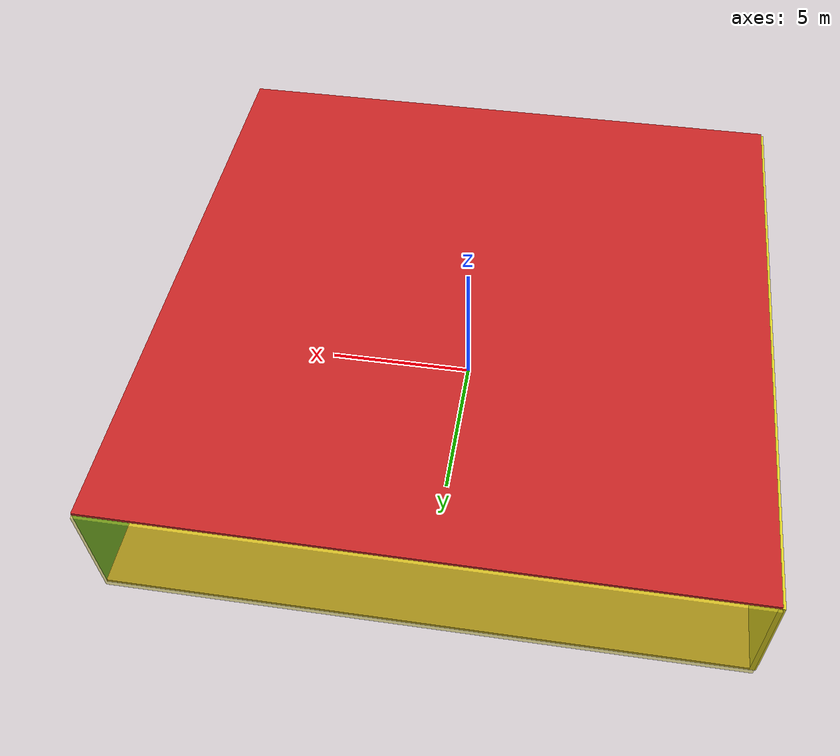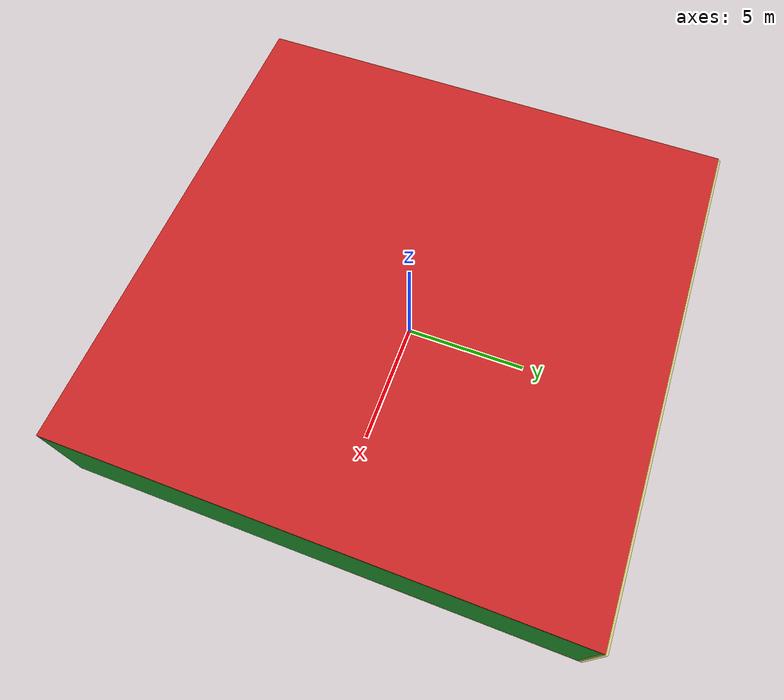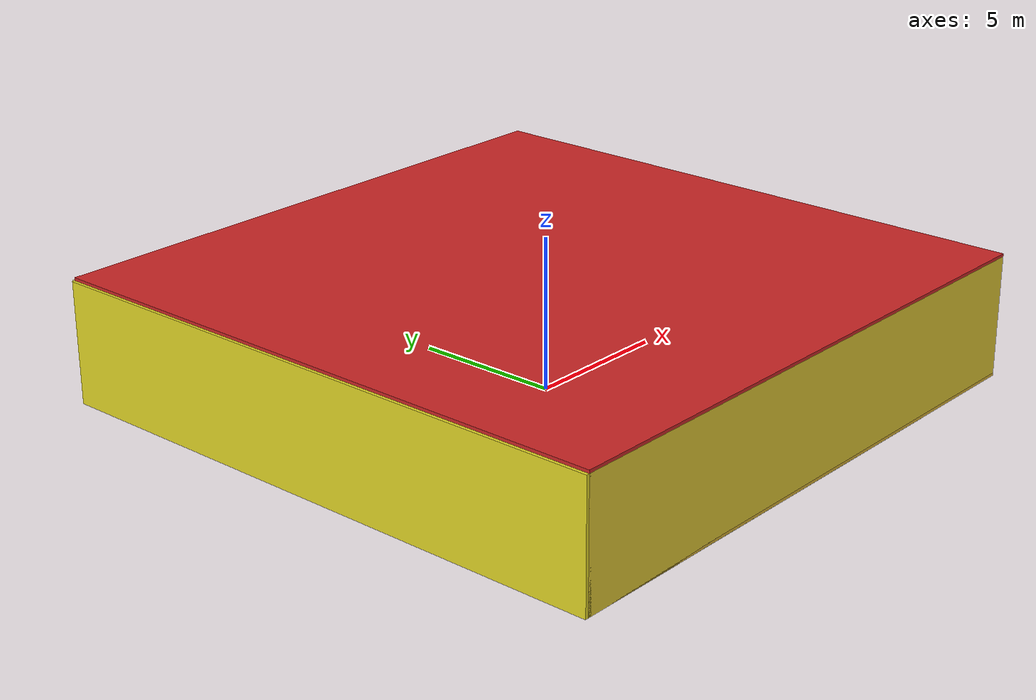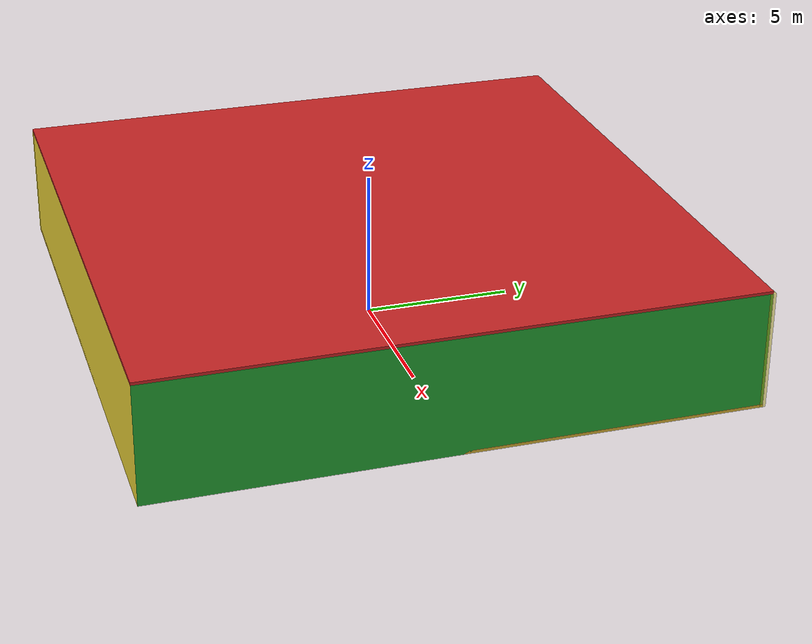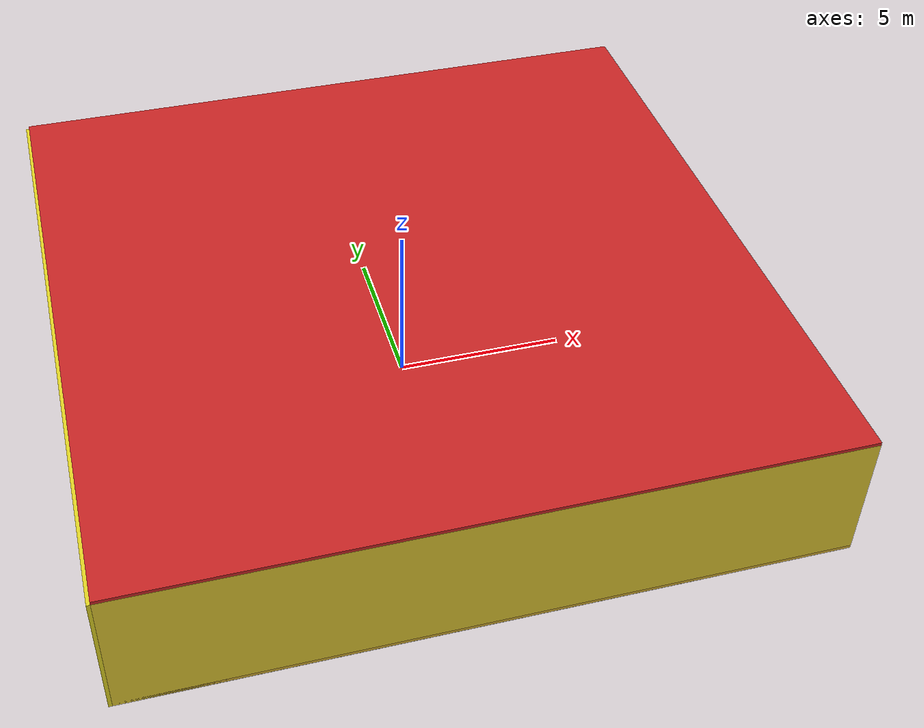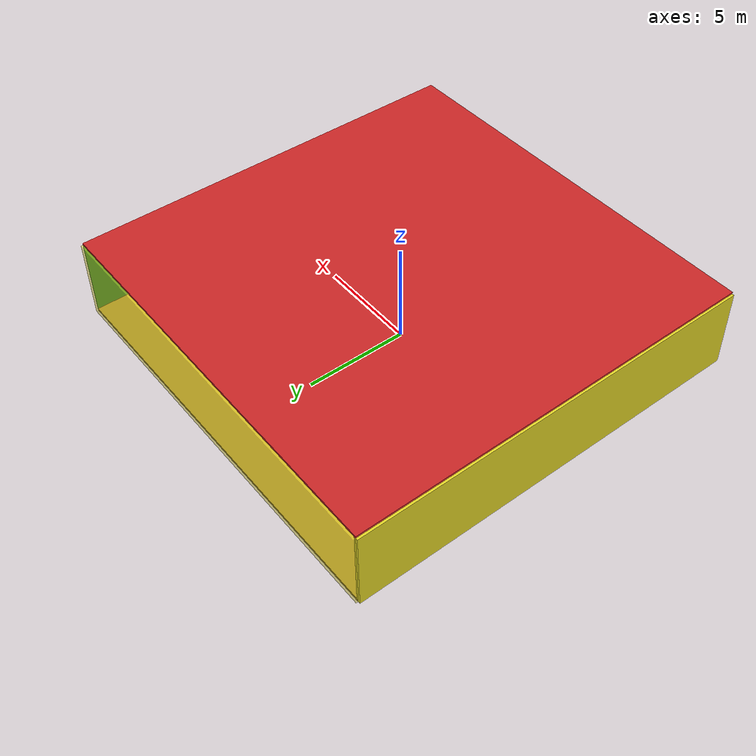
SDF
<sdf version="1.4">
 <world name="default">
  <physics type="ode">
   <max_step_size>0.001</max_step_size>
   <real_time_factor>1</real_time_factor>
   <real_time_update_rate>1000</real_time_update_rate>
   <gravity>0 0 -9.8</gravity>
  </physics>
  <scene><ambient>0.4 0.4 0.4 1</ambient><background>0.7 0.7 0.7 1</background><shadows>1</shadows></scene>
  <model name="Surrounding">
   <static>1</static>
   <link name="Ceiling">
    <collision name="Ceiling_Collision"><geometry><box><size>20 20 0.1</size></box></geometry></collision>
    <visual name="Ceiling_Visual">
     <geometry><box><size>20 20 0.1</size></box></geometry>
     <material>
      <script><uri>file://media/materials/scripts/gazebo.material</uri><name>Gazebo/RedBright</name></script>
     </material>
    </visual>
    <pose>0 0 4.05 0 0 0</pose>
   </link>
   <link name="Wall_South">
    <collision name="Wall_South_Collision">
     <geometry><box><size>20 0 4</size></box></geometry>
     <pose>0 0 2 0 -0 0</pose>
    </collision>
    <visual name="Wall_South_Visual">
     <pose>0 0 2 0 -0 0</pose>
     <geometry><box><size>20 0 4</size></box></geometry>
     <material>
      <script><uri>file://media/materials/scripts/gazebo.material</uri><name>Gazebo/ZincYellow</name></script>
     </material>
    </visual>
    <velocity_decay><linear>0</linear><angular>0</angular></velocity_decay>
    <pose>0 -10 0 0 -0 0</pose>
   </link>
   <link name="Wall_East">
    <collision name="Wall_21_Collision">
     <geometry><box><size>20 0 4</size></box></geometry>
     <pose>0 0 2 0 -0 0</pose>
    </collision>
    <visual name="Wall_21_Visual">
     <pose>0 0 2 0 -0 0</pose>
     <geometry><box><size>20 0 4</size></box></geometry>
     <material>
      <script><uri>file://media/materials/scripts/gazebo.material</uri><name>Gazebo/GreenGlow</name></script>
     </material>
    </visual>
    <velocity_decay><linear>0</linear><angular>0</angular></velocity_decay>
    <pose>10 0 0 0 -0 1.5708</pose>
   </link>
   <link name="Wall_North">
    <collision name="Wall_22_Collision">
     <geometry><box><size>20 0.2 4</size></box></geometry>
     <pose>0 0 2 0 -0 0</pose>
    </collision>
    <visual name="Wall_22_Visual">
     <pose>0 0 2 0 -0 0</pose>
     <geometry><box><size>20 0.2 4</size></box></geometry>
     <material>
      <script>
       <uri>file://media/materials/scripts/gazebo.material</uri>
       <name>Gazebo/YellowTransparent</name>
      </script>
     </material>
    </visual>
    <velocity_decay><linear>0</linear><angular>0</angular></velocity_decay>
    <pose>0 10 0 0 -0 0</pose>
   </link>
   <link name="Wall_West">
    <collision name="Wall_23_Collision">
     <geometry><box><size>20 0.2 4</size></box></geometry>
     <pose>0 0 2 0 -0 0</pose>
    </collision>
    <visual name="Wall_23_Visual">
     <pose>0 0 2 0 -0 0</pose>
     <geometry><box><size>20 0.2 4</size></box></geometry>
     <material>
      <script><uri>file://media/materials/scripts/gazebo.material</uri><name>Gazebo/Yellow</name></script>
     </material>
    </visual>
    <velocity_decay><linear>0</linear><angular>0</angular></velocity_decay>
    <pose>-10 0 0 0 0 -1.5708</pose>
   </link>
   <link name="Ground_link">
    <collision name="collision">
     <pose>0 0 .05 0 -0 0</pose>
     <geometry><box><size>20 20 0.1</size></box></geometry>
    </collision>
    <visual name="visual">
     <pose>0 0 .05 0 -0 0</pose>
     <geometry><box><size>20 20 0.1</size></box></geometry>
     <material>
      <script><uri>file://media/materials/scripts/gazebo.material</uri><name>Gazebo/Gold</name></script>
     </material>
    </visual>
   </link>
   <static>1</static>
  </model>
  <spherical_coordinates>
   <surface_model>EARTH_WGS84</surface_model>
   <latitude_deg>0</latitude_deg>
   <longitude_deg>0</longitude_deg>
   <elevation>0</elevation>
   <heading_deg>0</heading_deg>
  </spherical_coordinates>
  <light name="lightball_0" type="diffuse">
   <diffuse>0.8 0.8 0.8 1</diffuse>
   <specular>0.2 0.2 0.2 1</specular>
   <attenuation>
    <range>100</range>
    <constant>0.7</constant>
    <linear>0.01</linear>
    <quadratic>0.001</quadratic>
   </attenuation>
   <direction>-0.5 0.1 -0.9</direction>
   <pose>1.50461788218 6.55816126131 1.67551944157 0 0 0</pose>
  </light>
  <light name="lightball_1" type="diffuse">
   <diffuse>0.8 0.8 0.8 1</diffuse>
   <specular>0.2 0.2 0.2 1</specular>
   <attenuation>
    <range>100</range>
    <constant>0.7</constant>
    <linear>0.01</linear>
    <quadratic>0.001</quadratic>
   </attenuation>
   <direction>-0.5 0.1 -0.9</direction>
   <pose>6.08161338887 -6.27439554277 2.26922507336 0 0 0</pose>
  </light>
  <light name="lightball_2" type="diffuse">
   <diffuse>0.8 0.8 0.8 1</diffuse>
   <specular>0.2 0.2 0.2 1</specular>
   <attenuation>
    <range>100</range>
    <constant>0.7</constant>
    <linear>0.01</linear>
    <quadratic>0.001</quadratic>
   </attenuation>
   <direction>-0.5 0.1 -0.9</direction>
   <pose>-9.98059514609 -2.14136467099 2.63851048829 0 0 0</pose>
  </light>
  <light name="lightball_3" type="diffuse">
   <diffuse>0.8 0.8 0.8 1</diffuse>
   <specular>0.2 0.2 0.2 1</specular>
   <attenuation>
    <range>100</range>
    <constant>0.7</constant>
    <linear>0.01</linear>
    <quadratic>0.001</quadratic>
   </attenuation>
   <direction>-0.5 0.1 -0.9</direction>
   <pose>3.59318239507 -4.17267835235 3.64568451797 0 0 0</pose>
  </light>
  <light name="lightball_4" type="diffuse">
   <diffuse>0.8 0.8 0.8 1</diffuse>
   <specular>0.2 0.2 0.2 1</specular>
   <attenuation>
    <range>100</range>
    <constant>0.7</constant>
    <linear>0.01</linear>
    <quadratic>0.001</quadratic>
   </attenuation>
   <direction>-0.5 0.1 -0.9</direction>
   <pose>-2.89016932622 2.85584673115 2.60425234634 0 0 0</pose>
  </light>
  <include>
   <uri>model://textured_shapes</uri>
   <pose>-7.08148247691 4.26474609995 0 0 0 2.25981552486</pose>
  </include>
  <include><uri>model://cabinet</uri><pose>-4.69347704979 -6.85022515088 0 0 0 1.09800289435</pose></include>
  <include><uri>model://table</uri><pose>-4.7119167295 3.95023375302 0 0 0 2.43579686918</pose></include>
  <include><uri>model://cabinet</uri><pose>2.2404830949 -1.94005882718 0 0 0 1.48038169872</pose></include>
  <include><uri>model://cabinet</uri><pose>4.22687532519 -7.05284575948 0 0 0 0.360614026329</pose></include>
  <include><uri>model://cabinet</uri><pose>4.98762230524 1.2780139862 0 0 0 0.455794818124</pose></include>
  <include>
   <uri>model://textured_shapes</uri>
   <pose>7.05382288073 -0.820187011653 0 0 0 2.55074585032</pose>
  </include>
 </world>
</sdf>

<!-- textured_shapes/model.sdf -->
<sdf version="1.6">
  <model name="textured_shapes">
    <pose>0 0 0.5 0 0 0</pose>
    <link name="box">
      <pose>0 -1.5 0 0 0 0</pose>
      <collision name="collision">
        <geometry>
          <box>
            <size>1 1 1</size>
          </box>
        </geometry>
      </collision>
      <visual name="visual">
        <geometry>
          <box>
            <size>1 1 1</size>
          </box>
        </geometry>
        <material>
          <script>
            <uri>model://../model_source/models/textured_shapes/materials/scripts</uri>
            <uri>model://../model_source/models/textured_shapes/materials/textures</uri>
            <name>TexturedShape/Squares</name>
          </script>
        </material>
      </visual>
    </link>
    <link name="sphere">
      <collision name="collision">
        <geometry>
          <sphere>
            <radius>0.5</radius>
          </sphere>
        </geometry>
      </collision>
      <visual name="visual">
        <geometry>
          <sphere>
            <radius>0.5</radius>
          </sphere>
        </geometry>
        <material>
          <script>
            <uri>model://../model_source/models/textured_shapes/materials/scripts</uri>
            <uri>model://../model_source/models/textured_shapes/materials/textures</uri>
            <name>TexturedShape/Squares</name>
          </script>
        </material>
      </visual>
    </link>
    <link name="cylinder">
      <pose>0 1.5 0 0 0 0</pose>
      <collision name="collision">
        <geometry>
          <cylinder>
            <radius>0.5</radius>
            <length>1</length>
          </cylinder>
        </geometry>
      </collision>
      <visual name="visual">
        <geometry>
          <cylinder>
            <radius>0.5</radius>
            <length>1</length>
          </cylinder>
        </geometry>
        <material>
          <script>
            <uri>model://../model_source/models/textured_shapes/materials/scripts</uri>
            <uri>model://../model_source/models/textured_shapes/materials/textures</uri>
            <name>TexturedShape/Squares</name>
          </script>
        </material>
      </visual>
    </link>
  </model>
</sdf>

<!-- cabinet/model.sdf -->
<sdf version="1.5">
  <model name="cabinet">
    <static>true</static>
    <link name="cabinet_bottom_plate">
      <inertial>
        <pose>0 0 -1 0 0 0</pose>
        <inertia>
          <ixx>2.050000</ixx>
          <ixy>0</ixy>
          <ixz>0</ixz>
          <iyy>2.050000</iyy>
          <iyz>0</iyz>
          <izz>2.050000</izz>
        </inertia>
        <mass>25.000000</mass>
      </inertial>
      <collision name="cabinet_bottom_plate_geom">
        <pose>0 0 0.010000 0 0 0</pose>
        <geometry>
          <box>
            <size>0.450000 0.450000 0.020000</size>
          </box>
        </geometry>
      </collision>
      <visual name="cabinet_bottom_plate_geom_visual">
        <pose>0 0 0.010000 0 0 0</pose>
        <geometry>
          <box>
            <size>0.450000 0.450000 0.020000</size>
          </box>
        </geometry>
        <material>
          <script>
            <uri>model://media/materials/scripts/gazebo.material</uri>
            <name>Gazebo/Wood</name>
          </script>
        </material>
      </visual>
      <collision name="cabinet_bottom_plate_geom_cabinet_back_plate">
        <pose>0.235000 0 0.510000 0 0 0</pose>
        <geometry>
          <box>
            <size>0.020000 0.450000 1.020000</size>
          </box>
        </geometry>
      </collision>
      <visual name="cabinet_bottom_plate_geom_cabinet_back_plate_visual">
        <pose>0.235000 0 0.510000 0 0 0</pose>
        <geometry>
          <box>
            <size>0.020000 0.450000 1.020000</size>
          </box>
        </geometry>
        <material>
          <script>
            <uri>model://media/materials/scripts/gazebo.material</uri>
            <name>Gazebo/Wood</name>
          </script>
        </material>
      </visual>
      <collision name="cabinet_bottom_plate_geom_cabinet_left_plate">
        <pose>0 0.235000 0.510000 0 0 0</pose>
        <geometry>
          <box>
            <size>0.450000 0.020000 1.020000</size>
          </box>
        </geometry>
      </collision>
      <visual name="cabinet_bottom_plate_geom_cabinet_left_plate_visual">
        <pose>0 0.235000 0.510000 0 0 0</pose>
        <geometry>
          <box>
            <size>0.450000 0.020000 1.020000</size>
          </box>
        </geometry>
        <material>
          <script>
            <uri>model://media/materials/scripts/gazebo.material</uri>
            <name>Gazebo/Wood</name>
          </script>
        </material>
      </visual>
      <collision name="cabinet_bottom_plate_geom_cabinet_middle_plate">
        <pose>0 0 0.510000 0 0 0</pose>
        <geometry>
          <box>
            <size>0.450000 0.450000 0.020000</size>
          </box>
        </geometry>
      </collision>
      <visual name="cabinet_bottom_plate_geom_cabinet_middle_plate_visual">
        <pose>0 0 0.510000 0 0 0</pose>
        <geometry>
          <box>
            <size>0.450000 0.450000 0.020000</size>
          </box>
        </geometry>
        <material>
          <script>
            <uri>model://media/materials/scripts/gazebo.material</uri>
            <name>Gazebo/Wood</name>
          </script>
        </material>
      </visual>
      <collision name="cabinet_bottom_plate_geom_cabinet_right_plate">
        <pose>0 -0.235000 0.510000 0 0 0</pose>
        <geometry>
          <box>
            <size>0.450000 0.020000 1.020000</size>
          </box>
        </geometry>
      </collision>
      <visual name="cabinet_bottom_plate_geom_cabinet_right_plate_visual">
        <pose>0 -0.235000 0.510000 0 0 0</pose>
        <geometry>
          <box>
            <size>0.450000 0.020000 1.020000</size>
          </box>
        </geometry>
        <material>
          <script>
            <uri>model://media/materials/scripts/gazebo.material</uri>
            <name>Gazebo/Wood</name>
          </script>
        </material>
      </visual>
      <collision name="cabinet_bottom_plate_geom_cabinet_top_plate">
        <pose>0 0 1.010000 0 0 0</pose>
        <geometry>
          <box>
            <size>0.450000 0.450000 0.020000</size>
          </box>
        </geometry>
      </collision>
      <visual name="cabinet_bottom_plate_geom_cabinet_top_plate_visual">
        <pose>0 0 1.010000 0 0 0</pose>
        <geometry>
          <box>
            <size>0.450000 0.450000 0.020000</size>
          </box>
        </geometry>
        <material>
          <script>
            <uri>model://media/materials/scripts/gazebo.material</uri>
            <name>Gazebo/Wood</name>
          </script>
        </material>
      </visual>
    </link>
  </model>
</sdf>

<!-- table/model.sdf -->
<sdf version="1.5">
  <model name="table">
    <static>true</static>
    <link name="link">
      <collision name="surface">
        <pose>0 0 1.0 0 0 0</pose>
        <geometry>
          <box>
            <size>1.5 0.8 0.03</size>
          </box>
        </geometry>
        <surface>
          <friction>
            <ode>
              <mu>0.6</mu>
              <mu2>0.6</mu2>
            </ode>
          </friction>
        </surface>
      </collision>
      <visual name="visual1">
        <pose>0 0 1.0 0 0 0</pose>
        <geometry>
          <box>
            <size>1.5 0.8 0.03</size>
          </box>
        </geometry>
        <material>
          <script>
            <uri>model://media/materials/scripts/gazebo.material</uri>
            <name>Gazebo/Wood</name>
          </script>
        </material>
      </visual>
      <collision name="front_left_leg">
        <pose>0.68 0.38 0.5 0 0 0</pose>
        <geometry>
          <cylinder>
            <radius>0.02</radius>
            <length>1.0</length>
          </cylinder>
        </geometry>
      </collision>
      <visual name="front_left_leg">
        <pose>0.68 0.38 0.5 0 0 0</pose>
        <geometry>
          <cylinder>
            <radius>0.02</radius>
            <length>1.0</length>
          </cylinder>
        </geometry>
        <material>
          <script>
            <uri>model://media/materials/scripts/gazebo.material</uri>
            <name>Gazebo/Grey</name>
          </script>
        </material>
      </visual>
      <collision name="front_right_leg">
        <pose>0.68 -0.38 0.5 0 0 0</pose>
        <geometry>
          <cylinder>
            <radius>0.02</radius>
            <length>1.0</length>
          </cylinder>
        </geometry>
      </collision>
      <visual name="front_right_leg">
        <pose>0.68 -0.38 0.5 0 0 0</pose>
        <geometry>
          <cylinder>
            <radius>0.02</radius>
            <length>1.0</length>
          </cylinder>
        </geometry>
        <material>
          <script>
            <uri>model://media/materials/scripts/gazebo.material</uri>
            <name>Gazebo/Grey</name>
          </script>
        </material>
      </visual>
      <collision name="back_right_leg">
        <pose>-0.68 -0.38 0.5 0 0 0</pose>
        <geometry>
          <cylinder>
            <radius>0.02</radius>
            <length>1.0</length>
          </cylinder>
        </geometry>
      </collision>
      <visual name="back_right_leg">
        <pose>-0.68 -0.38 0.5 0 0 0</pose>
        <geometry>
          <cylinder>
            <radius>0.02</radius>
            <length>1.0</length>
          </cylinder>
        </geometry>
        <material>
          <script>
            <uri>model://media/materials/scripts/gazebo.material</uri>
            <name>Gazebo/Grey</name>
          </script>
        </material>
      </visual>
      <collision name="back_left_leg">
        <pose>-0.68 0.38 0.5 0 0 0</pose>
        <geometry>
          <cylinder>
            <radius>0.02</radius>
            <length>1.0</length>
          </cylinder>
        </geometry>
      </collision>
      <visual name="back_left_leg">
        <pose>-0.68 0.38 0.5 0 0 0</pose>
        <geometry>
          <cylinder>
            <radius>0.02</radius>
            <length>1.0</length>
          </cylinder>
        </geometry>
        <material>
          <script>
            <uri>model://media/materials/scripts/gazebo.material</uri>
            <name>Gazebo/Grey</name>
          </script>
        </material>
      </visual>
    </link>
  </model>
</sdf>
